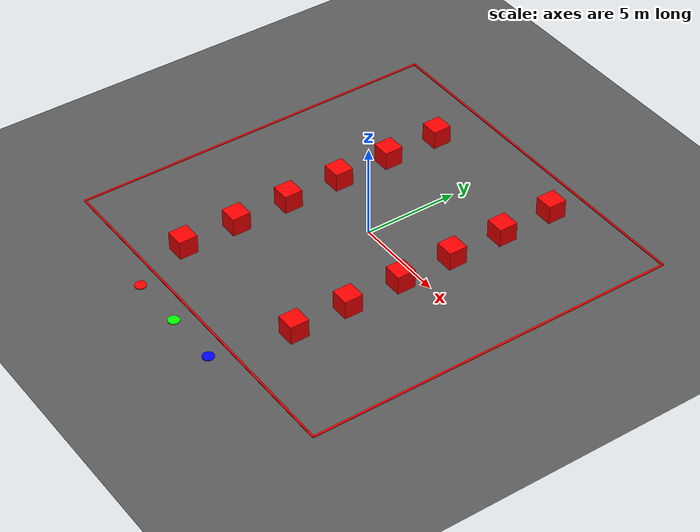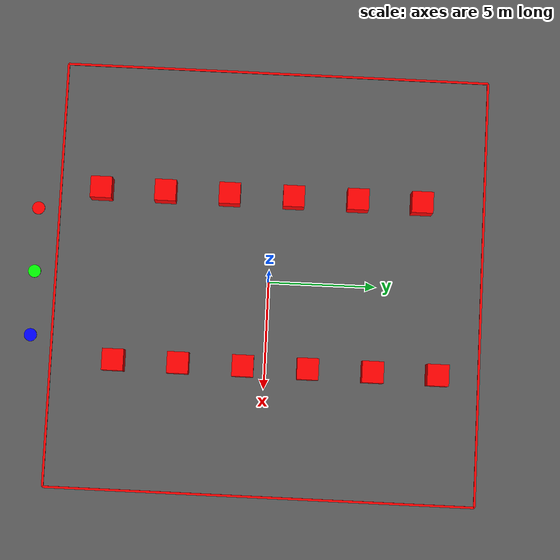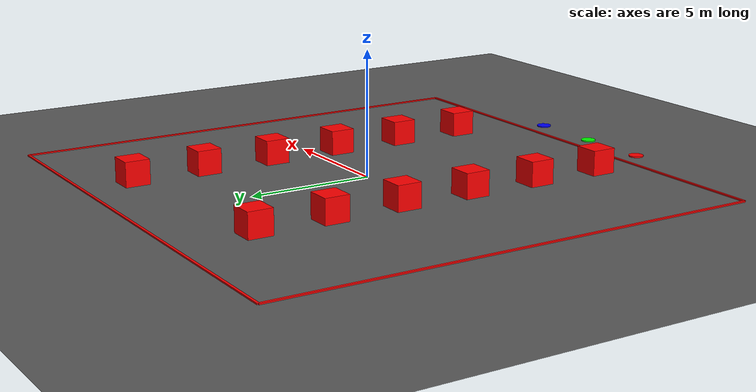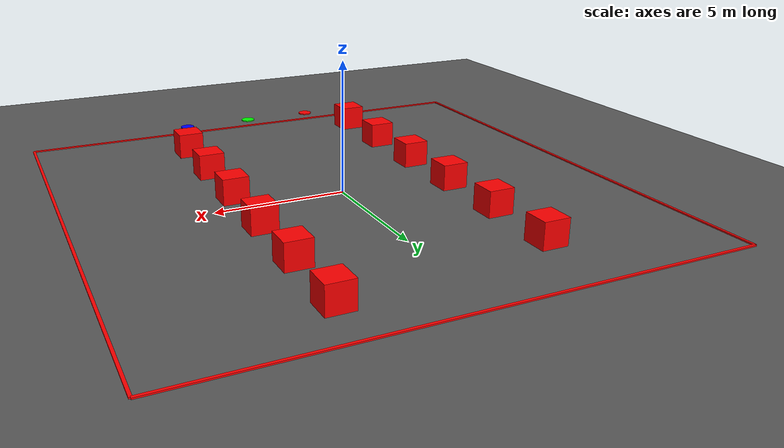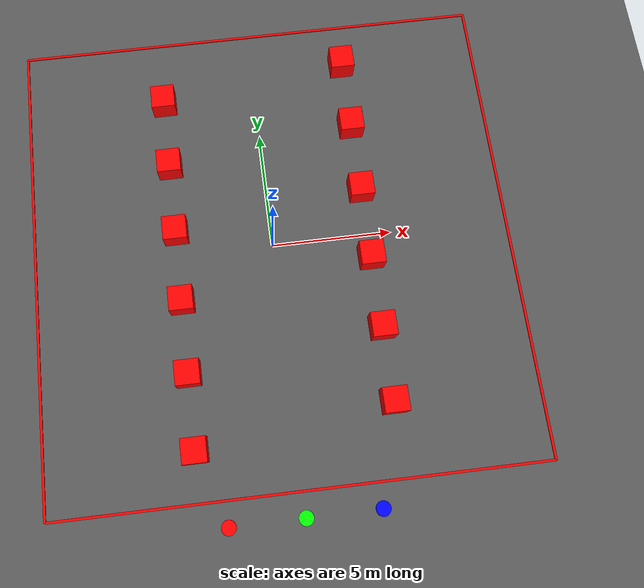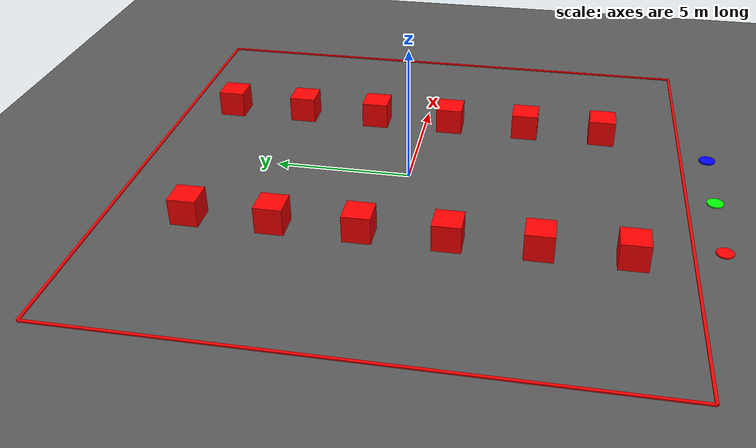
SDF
<sdf version="1.7">
 <world name="quadcopter_world">
  <physics type="ode"/>
  <plugin filename="gz-sim-physics-system" name="gz::sim::systems::Physics"/>
  <plugin filename="gz-sim-user-commands-system" name="gz::sim::systems::UserCommands"/>
  <plugin filename="gz-sim-scene-broadcaster-system" name="gz::sim::systems::SceneBroadcaster"/>
  <plugin filename="gz-sim-sensors-system" name="gz::sim::systems::Sensors">
   <render_engine>ogre2</render_engine>
  </plugin>
  <scene><ambient>0.4 0.4 0.4 1</ambient><background>0.7 0.85 1 1</background><shadows>true</shadows></scene>
  <light type="directional" name="sun">
   <pose>0 0 50 0 0 0</pose>
   <diffuse>1 1 1 1</diffuse>
   <specular>1 1 1 1</specular>
   <attenuation>
    <range>1000</range>
    <constant>0.9</constant>
    <linear>0.01</linear>
    <quadratic>0.001</quadratic>
   </attenuation>
   <direction>-0.4 -0.2 -1</direction>
  </light>
  <model name="ground_plane">
   <static>true</static>
   <link name="link">
    <collision name="collision">
     <geometry><plane><normal>0 0 1</normal><size>200 200</size></plane></geometry>
    </collision>
    <visual name="visual">
     <geometry><plane><normal>0 0 1</normal><size>200 200</size></plane></geometry>
     <material><ambient>0.3 0.3 0.3 1</ambient><diffuse>0.35 0.35 0.35 1</diffuse></material>
    </visual>
   </link>
  </model>
  <model name="pad_x1">
   <static>true</static>
   <pose>-3 -11 0 0 0 0</pose>
   <link name="link">
    <visual name="visual">
     <geometry><cylinder><radius>0.3</radius><length>0.05</length></cylinder></geometry>
     <material><ambient>1 0 0 1</ambient><diffuse>1 0 0 1</diffuse></material>
    </visual>
   </link>
  </model>
  <model name="pad_x2">
   <static>true</static>
   <pose>0 -11 0 0 0 0</pose>
   <link name="link">
    <visual name="visual">
     <geometry><cylinder><radius>0.3</radius><length>0.05</length></cylinder></geometry>
     <material><ambient>0 1 0 1</ambient><diffuse>0 1 0 1</diffuse></material>
    </visual>
   </link>
  </model>
  <model name="pad_x3">
   <static>true</static>
   <pose>3 -11 0 0 0 0</pose>
   <link name="link">
    <visual name="visual">
     <geometry><cylinder><radius>0.3</radius><length>0.05</length></cylinder></geometry>
     <material><ambient>0 0 1 1</ambient><diffuse>0 0 1 1</diffuse></material>
    </visual>
   </link>
  </model>
  <model name="search_area_outline">
   <static>true</static>
   <link name="line_bottom">
    <visual name="vis">
     <geometry><box><size>20 0.1 0.05</size></box></geometry>
     <material><ambient>1 0 0 1</ambient><diffuse>1 0 0 1</diffuse></material>
    </visual>
    <pose>0 -10 0.01 0 0 0</pose>
   </link>
   <link name="line_top">
    <visual name="vis">
     <geometry><box><size>20 0.1 0.05</size></box></geometry>
     <material><ambient>1 0 0 1</ambient><diffuse>1 0 0 1</diffuse></material>
    </visual>
    <pose>0 10 0.01 0 0 0</pose>
   </link>
   <link name="line_left">
    <visual name="vis">
     <geometry><box><size>0.1 20 0.05</size></box></geometry>
     <material><ambient>1 0 0 1</ambient><diffuse>1 0 0 1</diffuse></material>
    </visual>
    <pose>-10 0 0.01 0 0 0</pose>
   </link>
   <link name="line_right">
    <visual name="vis">
     <geometry><box><size>0.1 20 0.05</size></box></geometry>
     <material><ambient>1 0 0 1</ambient><diffuse>1 0 0 1</diffuse></material>
    </visual>
    <pose>10 0 0.01 0 0 0</pose>
   </link>
  </model>
  <model name="box_1">
   <static>true</static>
   <pose>-4 -8 0.5 0 0 0</pose>
   <link name="link">
    <collision name="collision"><geometry><box><size>1 1 1</size></box></geometry></collision>
    <visual name="visual">
     <geometry><box><size>1 1 1</size></box></geometry>
     <material><ambient>1 0 0 1</ambient></material>
    </visual>
   </link>
  </model>
  <model name="box_2">
   <static>true</static>
   <pose>-4 -5 0.5 0 0 0</pose>
   <link name="link">
    <collision name="collision"><geometry><box><size>1 1 1</size></box></geometry></collision>
    <visual name="visual">
     <geometry><box><size>1 1 1</size></box></geometry>
     <material><ambient>1 0 0 1</ambient></material>
    </visual>
   </link>
  </model>
  <model name="box_3">
   <static>true</static>
   <pose>-4 -2 0.5 0 0 0</pose>
   <link name="link">
    <collision name="collision"><geometry><box><size>1 1 1</size></box></geometry></collision>
    <visual name="visual">
     <geometry><box><size>1 1 1</size></box></geometry>
     <material><ambient>1 0 0 1</ambient></material>
    </visual>
   </link>
  </model>
  <model name="box_4">
   <static>true</static>
   <pose>-4 1 0.5 0 0 0</pose>
   <link name="link">
    <collision name="collision"><geometry><box><size>1 1 1</size></box></geometry></collision>
    <visual name="visual">
     <geometry><box><size>1 1 1</size></box></geometry>
     <material><ambient>1 0 0 1</ambient></material>
    </visual>
   </link>
  </model>
  <model name="box_5">
   <static>true</static>
   <pose>-4 4 0.5 0 0 0</pose>
   <link name="link">
    <collision name="collision"><geometry><box><size>1 1 1</size></box></geometry></collision>
    <visual name="visual">
     <geometry><box><size>1 1 1</size></box></geometry>
     <material><ambient>1 0 0 1</ambient></material>
    </visual>
   </link>
  </model>
  <model name="box_6">
   <static>true</static>
   <pose>-4 7 0.5 0 0 0</pose>
   <link name="link">
    <collision name="collision"><geometry><box><size>1 1 1</size></box></geometry></collision>
    <visual name="visual">
     <geometry><box><size>1 1 1</size></box></geometry>
     <material><ambient>1 0 0 1</ambient></material>
    </visual>
   </link>
  </model>
  <model name="box_7">
   <static>true</static>
   <pose>4 -7 0.5 0 0 0</pose>
   <link name="link">
    <collision name="collision"><geometry><box><size>1 1 1</size></box></geometry></collision>
    <visual name="visual">
     <geometry><box><size>1 1 1</size></box></geometry>
     <material><ambient>1 0 0 1</ambient></material>
    </visual>
   </link>
  </model>
  <model name="box_8">
   <static>true</static>
   <pose>4 -4 0.5 0 0 0</pose>
   <link name="link">
    <collision name="collision"><geometry><box><size>1 1 1</size></box></geometry></collision>
    <visual name="visual">
     <geometry><box><size>1 1 1</size></box></geometry>
     <material><ambient>1 0 0 1</ambient></material>
    </visual>
   </link>
  </model>
  <model name="box_9">
   <static>true</static>
   <pose>4 -1 0.5 0 0 0</pose>
   <link name="link">
    <collision name="collision"><geometry><box><size>1 1 1</size></box></geometry></collision>
    <visual name="visual">
     <geometry><box><size>1 1 1</size></box></geometry>
     <material><ambient>1 0 0 1</ambient></material>
    </visual>
   </link>
  </model>
  <model name="box_10">
   <static>true</static>
   <pose>4 2 0.5 0 0 0</pose>
   <link name="link">
    <collision name="collision"><geometry><box><size>1 1 1</size></box></geometry></collision>
    <visual name="visual">
     <geometry><box><size>1 1 1</size></box></geometry>
     <material><ambient>1 0 0 1</ambient></material>
    </visual>
   </link>
  </model>
  <model name="box_11">
   <static>true</static>
   <pose>4 5 0.5 0 0 0</pose>
   <link name="link">
    <collision name="collision"><geometry><box><size>1 1 1</size></box></geometry></collision>
    <visual name="visual">
     <geometry><box><size>1 1 1</size></box></geometry>
     <material><ambient>1 0 0 1</ambient></material>
    </visual>
   </link>
  </model>
  <model name="box_12">
   <static>true</static>
   <pose>4 8 0.5 0 0 0</pose>
   <link name="link">
    <collision name="collision"><geometry><box><size>1 1 1</size></box></geometry></collision>
    <visual name="visual">
     <geometry><box><size>1 1 1</size></box></geometry>
     <material><ambient>1 0 0 1</ambient></material>
    </visual>
   </link>
  </model>
 </world>
</sdf>
